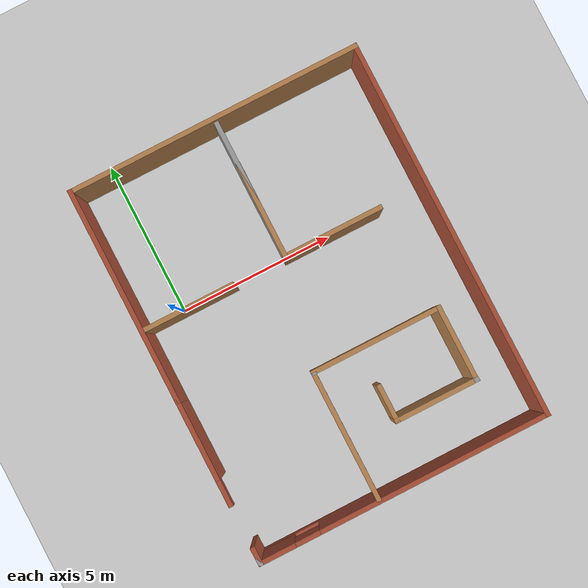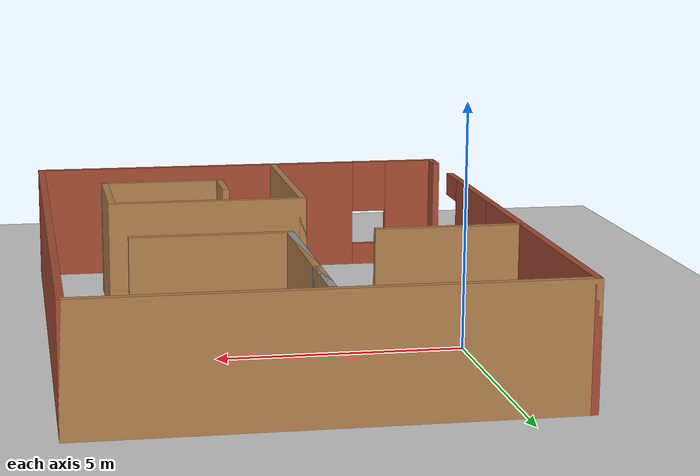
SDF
<sdf version="1.7">
 <world name="default">
  <light name="sun" type="directional">
   <pose>0 0 10 0 -0 0</pose>
   <diffuse>0.8 0.8 0.8 1</diffuse>
   <specular>0.2 0.2 0.2 1</specular>
   <attenuation>
    <range>1000</range>
    <constant>0.9</constant>
    <linear>0.01</linear>
    <quadratic>0.001</quadratic>
   </attenuation>
   <direction>-0.5 0.1 -0.9</direction>
   <spot><inner_angle>0</inner_angle><outer_angle>0</outer_angle><falloff>0</falloff></spot>
  </light>
  <model name="ground_plane">
   <static>1</static>
   <link name="link">
    <collision name="collision">
     <geometry><plane><normal>0 0 1</normal><size>100 100</size></plane></geometry>
     <surface><friction><ode><mu>100</mu><mu2>50</mu2></ode></friction></surface>
    </collision>
    <visual name="visual">
     <cast_shadows>0</cast_shadows>
     <geometry><plane><normal>0 0 1</normal><size>100 100</size></plane></geometry>
     <material>
      <script><uri>file://media/materials/scripts/gazebo.material</uri><name>Gazebo/Grey</name></script>
     </material>
    </visual>
   </link>
  </model>
  <gravity>0 0 -9.8</gravity>
  <magnetic_field>6e-06 2.3e-05 -4.2e-05</magnetic_field>
  <atmosphere type="adiabatic"/>
  <physics type="ode">
   <max_step_size>0.001</max_step_size>
   <real_time_factor>1</real_time_factor>
   <real_time_update_rate>1000</real_time_update_rate>
  </physics>
  <scene><ambient>0.4 0.4 0.4 1</ambient><background>0.7 0.7 0.7 1</background><shadows>1</shadows></scene>
  <spherical_coordinates>
   <surface_model>EARTH_WGS84</surface_model>
   <latitude_deg>0</latitude_deg>
   <longitude_deg>0</longitude_deg>
   <elevation>0</elevation>
   <heading_deg>0</heading_deg>
  </spherical_coordinates>
  <model name="house_model">
   <pose>3.465 -1.61 0 0 -0 0</pose>
   <link name="Wall_0">
    <pose>-4.675 -2.475 0 0 -0 -1.5708</pose>
    <visual name="Wall_0_Visual_0">
     <pose>-0.424144 0 1.25 0 -0 0</pose>
     <geometry><box><size>2.65171 0.15 2.5</size></box></geometry>
     <material>
      <script><uri>file://media/materials/scripts/gazebo.material</uri><name>Gazebo/Bricks</name></script>
      <ambient>1 1 1 1</ambient>
     </material>
     <meta><layer>0</layer></meta>
    </visual>
    <collision name="Wall_0_Collision_0">
     <geometry><box><size>2.65171 0.15 2.5</size></box></geometry>
     <pose>-0.424144 0 1.25 0 -0 0</pose>
    </collision>
    <visual name="Wall_0_Visual_1">
     <pose>1.32586 0 2.25 0 -0 0</pose>
     <geometry><box><size>0.848288 0.15 0.5</size></box></geometry>
     <material>
      <script><uri>file://media/materials/scripts/gazebo.material</uri><name>Gazebo/Bricks</name></script>
      <ambient>1 1 1 1</ambient>
     </material>
     <meta><layer>0</layer></meta>
    </visual>
    <collision name="Wall_0_Collision_1">
     <geometry><box><size>0.848288 0.15 0.5</size></box></geometry>
     <pose>1.32586 0 2.25 0 -0 0</pose>
    </collision>
   </link>
   <link name="Wall_10">
    <collision name="Wall_10_Collision">
     <geometry><box><size>1.5 0.15 2.5</size></box></geometry>
     <pose>0 0 1.25 0 -0 0</pose>
    </collision>
    <visual name="Wall_10_Visual">
     <pose>0 0 1.25 0 -0 0</pose>
     <geometry><box><size>1.5 0.15 2.5</size></box></geometry>
     <material>
      <script><uri>file://media/materials/scripts/gazebo.material</uri><name>Gazebo/Wood</name></script>
      <ambient>1 1 1 1</ambient>
     </material>
     <meta><layer>0</layer></meta>
    </visual>
    <pose>0.030455 5.18138 0 0 -0 -1.5708</pose>
   </link>
   <link name="Wall_11">
    <collision name="Wall_11_Collision">
     <geometry><box><size>0.16 0.15 2.5</size></box></geometry>
     <pose>0 0 1.25 0 -0 0</pose>
    </collision>
    <visual name="Wall_11_Visual">
     <pose>0 0 1.25 0 -0 0</pose>
     <geometry><box><size>0.16 0.15 2.5</size></box></geometry>
     <material>
      <script><uri>file://media/materials/scripts/gazebo.material</uri><name>Gazebo/Grey</name></script>
      <ambient>1 1 1 1</ambient>
     </material>
     <meta><layer>0</layer></meta>
    </visual>
    <pose>0.035455 4.50638 0 0 -0 0</pose>
   </link>
   <link name="Wall_12">
    <collision name="Wall_12_Collision">
     <geometry><box><size>3.15002 0.15 2.5</size></box></geometry>
     <pose>0 0 1.25 0 -0 0</pose>
    </collision>
    <visual name="Wall_12_Visual">
     <pose>0 0 1.25 0 -0 0</pose>
     <geometry><box><size>3.15002 0.15 2.5</size></box></geometry>
     <material>
      <script><uri>file://media/materials/scripts/gazebo.material</uri><name>Gazebo/Wood</name></script>
      <ambient>1 1 1 1</ambient>
     </material>
     <meta><layer>0</layer></meta>
    </visual>
    <pose>0.035455 3.00638 0 0 -0 -1.57413</pose>
   </link>
   <link name="Wall_13">
    <collision name="Wall_13_Collision">
     <geometry><box><size>3.25 0.15 2.5</size></box></geometry>
     <pose>0 0 1.25 0 -0 0</pose>
    </collision>
    <visual name="Wall_13_Visual">
     <pose>0 0 1.25 0 -0 0</pose>
     <geometry><box><size>3.25 0.15 2.5</size></box></geometry>
     <material>
      <script><uri>file://media/materials/scripts/gazebo.material</uri><name>Gazebo/Wood</name></script>
      <ambient>1 1 1 1</ambient>
     </material>
     <meta><layer>0</layer></meta>
    </visual>
    <pose>1.58045 1.50639 0 0 -0 0</pose>
   </link>
   <link name="Wall_15">
    <collision name="Wall_15_Collision">
     <geometry><box><size>3 0.15 2.5</size></box></geometry>
     <pose>0 0 1.25 0 -0 0</pose>
    </collision>
    <visual name="Wall_15_Visual">
     <pose>0 0 1.25 0 -0 0</pose>
     <geometry><box><size>3 0.15 2.5</size></box></geometry>
     <material>
      <script><uri>file://media/materials/scripts/gazebo.material</uri><name>Gazebo/Wood</name></script>
      <ambient>1 1 1 1</ambient>
     </material>
     <meta><layer>0</layer></meta>
    </visual>
    <pose>-3.16331 1.47959 0 0 -0 3.14159</pose>
   </link>
   <link name="Wall_17">
    <collision name="Wall_17_Collision">
     <geometry><box><size>4.25 0.15 2.5</size></box></geometry>
     <pose>0 0 1.25 0 -0 0</pose>
    </collision>
    <visual name="Wall_17_Visual">
     <pose>0 0 1.25 0 -0 0</pose>
     <geometry><box><size>4.25 0.15 2.5</size></box></geometry>
     <material>
      <script><uri>file://media/materials/scripts/gazebo.material</uri><name>Gazebo/Wood</name></script>
      <ambient>1 1 1 1</ambient>
     </material>
     <meta><layer>0</layer></meta>
    </visual>
    <pose>-0.800329 -3.92067 0 0 -0 1.5708</pose>
   </link>
   <link name="Wall_18">
    <collision name="Wall_18_Collision">
     <geometry><box><size>0.16 0.15 2.5</size></box></geometry>
     <pose>0 0 1.25 0 -0 0</pose>
    </collision>
    <visual name="Wall_18_Visual">
     <pose>0 0 1.25 0 -0 0</pose>
     <geometry><box><size>0.16 0.15 2.5</size></box></geometry>
     <material>
      <script><uri>file://media/materials/scripts/gazebo.material</uri><name>Gazebo/Grey</name></script>
      <ambient>1 1 1 1</ambient>
     </material>
     <meta><layer>0</layer></meta>
    </visual>
    <pose>-0.795329 -1.87067 0 0 -0 0</pose>
   </link>
   <link name="Wall_19">
    <collision name="Wall_19_Collision">
     <geometry><box><size>4.25 0.15 2.5</size></box></geometry>
     <pose>0 0 1.25 0 -0 0</pose>
    </collision>
    <visual name="Wall_19_Visual">
     <pose>0 0 1.25 0 -0 0</pose>
     <geometry><box><size>4.25 0.15 2.5</size></box></geometry>
     <material>
      <script><uri>file://media/materials/scripts/gazebo.material</uri><name>Gazebo/Wood</name></script>
      <ambient>1 1 1 1</ambient>
     </material>
     <meta><layer>0</layer></meta>
    </visual>
    <pose>1.25967 -1.87067 0 0 -0 0</pose>
   </link>
   <link name="Wall_2">
    <collision name="Wall_2_Collision">
     <geometry><box><size>7 0.15 2.5</size></box></geometry>
     <pose>0 0 1.25 0 -0 0</pose>
    </collision>
    <visual name="Wall_2_Visual">
     <pose>0 0 1.25 0 -0 0</pose>
     <geometry><box><size>7 0.15 2.5</size></box></geometry>
     <material>
      <script><uri>file://media/materials/scripts/gazebo.material</uri><name>Gazebo/Bricks</name></script>
      <ambient>1 1 1 1</ambient>
     </material>
     <meta><layer>0</layer></meta>
    </visual>
    <pose>-4.675 2.625 0 0 -0 1.5708</pose>
   </link>
   <link name="Wall_20">
    <collision name="Wall_20_Collision">
     <geometry><box><size>2.5 0.15 2.5</size></box></geometry>
     <pose>0 0 1.25 0 -0 0</pose>
    </collision>
    <visual name="Wall_20_Visual">
     <pose>0 0 1.25 0 -0 0</pose>
     <geometry><box><size>2.5 0.15 2.5</size></box></geometry>
     <material>
      <script><uri>file://media/materials/scripts/gazebo.material</uri><name>Gazebo/Wood</name></script>
      <ambient>1 1 1 1</ambient>
     </material>
     <meta><layer>0</layer></meta>
    </visual>
    <pose>3.30967 -3.04567 0 0 -0 -1.5708</pose>
   </link>
   <link name="Wall_21">
    <collision name="Wall_21_Collision">
     <geometry><box><size>0.16 0.15 2.5</size></box></geometry>
     <pose>0 0 1.25 0 -0 0</pose>
    </collision>
    <visual name="Wall_21_Visual">
     <pose>0 0 1.25 0 -0 0</pose>
     <geometry><box><size>0.16 0.15 2.5</size></box></geometry>
     <material>
      <script><uri>file://media/materials/scripts/gazebo.material</uri><name>Gazebo/Grey</name></script>
      <ambient>1 1 1 1</ambient>
     </material>
     <meta><layer>0</layer></meta>
    </visual>
    <pose>3.31467 -4.22067 0 0 -0 0</pose>
   </link>
   <link name="Wall_22">
    <collision name="Wall_22_Collision">
     <geometry><box><size>2.75 0.15 2.5</size></box></geometry>
     <pose>0 0 1.25 0 -0 0</pose>
    </collision>
    <visual name="Wall_22_Visual">
     <pose>0 0 1.25 0 -0 0</pose>
     <geometry><box><size>2.75 0.15 2.5</size></box></geometry>
     <material>
      <script><uri>file://media/materials/scripts/gazebo.material</uri><name>Gazebo/Wood</name></script>
      <ambient>1 1 1 1</ambient>
     </material>
     <meta><layer>0</layer></meta>
    </visual>
    <pose>2.01967 -4.22067 0 0 -0 3.14159</pose>
   </link>
   <link name="Wall_23">
    <collision name="Wall_23_Collision">
     <geometry><box><size>1.25 0.15 2.5</size></box></geometry>
     <pose>0 0 1.25 0 -0 0</pose>
    </collision>
    <visual name="Wall_23_Visual">
     <pose>0 0 1.25 0 -0 0</pose>
     <geometry><box><size>1.25 0.15 2.5</size></box></geometry>
     <material>
      <script><uri>file://media/materials/scripts/gazebo.material</uri><name>Gazebo/Wood</name></script>
      <ambient>1 1 1 1</ambient>
     </material>
     <meta><layer>0</layer></meta>
    </visual>
    <pose>0.719671 -3.67067 0 0 -0 1.5708</pose>
   </link>
   <link name="Wall_3">
    <collision name="Wall_3_Collision">
     <geometry><box><size>9.5 0.15 2.5</size></box></geometry>
     <pose>0 0 1.25 0 -0 0</pose>
    </collision>
    <visual name="Wall_3_Visual">
     <pose>0 0 1.25 0 -0 0</pose>
     <geometry><box><size>9.5 0.15 2.5</size></box></geometry>
     <material>
      <script><uri>file://media/materials/scripts/gazebo.material</uri><name>Gazebo/Wood</name></script>
      <ambient>1 1 1 1</ambient>
     </material>
     <meta><layer>0</layer></meta>
    </visual>
    <pose>-0 6.05 0 0 -0 0</pose>
   </link>
   <link name="Wall_4">
    <collision name="Wall_4_Collision">
     <geometry><box><size>12.25 0.15 2.5</size></box></geometry>
     <pose>0 0 1.25 0 -0 0</pose>
    </collision>
    <visual name="Wall_4_Visual">
     <pose>0 0 1.25 0 -0 0</pose>
     <geometry><box><size>12.25 0.15 2.5</size></box></geometry>
     <material>
      <script><uri>file://media/materials/scripts/gazebo.material</uri><name>Gazebo/Bricks</name></script>
      <ambient>1 1 1 1</ambient>
     </material>
     <meta><layer>0</layer></meta>
    </visual>
    <pose>4.675 0 0 0 -0 -1.5708</pose>
   </link>
   <link name="Wall_5">
    <pose>-0 -6.05 0 0 -0 3.14159</pose>
    <visual name="Wall_5_Visual_0">
     <pose>-1.00906 0 1.25 0 -0 0</pose>
     <geometry><box><size>7.48188 0.15 2.5</size></box></geometry>
     <material>
      <script><uri>file://media/materials/scripts/gazebo.material</uri><name>Gazebo/Bricks</name></script>
      <ambient>1 1 1 1</ambient>
     </material>
     <meta><layer>0</layer></meta>
    </visual>
    <collision name="Wall_5_Collision_0">
     <geometry><box><size>7.48188 0.15 2.5</size></box></geometry>
     <pose>-1.00906 0 1.25 0 -0 0</pose>
    </collision>
    <visual name="Wall_5_Visual_1">
     <pose>3.74094 0 0.25 0 -0 0</pose>
     <geometry><box><size>2.01812 0.15 0.5</size></box></geometry>
     <material>
      <script><uri>file://media/materials/scripts/gazebo.material</uri><name>Gazebo/Bricks</name></script>
      <ambient>1 1 1 1</ambient>
     </material>
     <meta><layer>0</layer></meta>
    </visual>
    <collision name="Wall_5_Collision_1">
     <geometry><box><size>2.01812 0.15 0.5</size></box></geometry>
     <pose>3.74094 0 0.25 0 -0 0</pose>
    </collision>
    <visual name="Wall_5_Visual_2">
     <pose>4.14094 0 1.5 0 -0 0</pose>
     <geometry><box><size>1.21812 0.15 2</size></box></geometry>
     <material>
      <script><uri>file://media/materials/scripts/gazebo.material</uri><name>Gazebo/Bricks</name></script>
      <ambient>1 1 1 1</ambient>
     </material>
     <meta><layer>0</layer></meta>
    </visual>
    <collision name="Wall_5_Collision_2">
     <geometry><box><size>1.21812 0.15 2</size></box></geometry>
     <pose>4.14094 0 1.5 0 -0 0</pose>
    </collision>
    <visual name="Wall_5_Visual_3">
     <pose>3.13188 0 1.9 0 -0 0</pose>
     <geometry><box><size>0.8 0.15 1.2</size></box></geometry>
     <material>
      <script><uri>file://media/materials/scripts/gazebo.material</uri><name>Gazebo/Bricks</name></script>
      <ambient>1 1 1 1</ambient>
     </material>
     <meta><layer>0</layer></meta>
    </visual>
    <collision name="Wall_5_Collision_3">
     <geometry><box><size>0.8 0.15 1.2</size></box></geometry>
     <pose>3.13188 0 1.9 0 -0 0</pose>
    </collision>
   </link>
   <link name="Wall_6">
    <collision name="Wall_6_Collision">
     <geometry><box><size>0.25 0.15 2.5</size></box></geometry>
     <pose>0 0 1.25 0 -0 0</pose>
    </collision>
    <visual name="Wall_6_Visual">
     <pose>0 0 1.25 0 -0 0</pose>
     <geometry><box><size>0.25 0.15 2.5</size></box></geometry>
     <material>
      <script><uri>file://media/materials/scripts/gazebo.material</uri><name>Gazebo/Grey</name></script>
      <ambient>1 1 1 1</ambient>
     </material>
     <meta><layer>0</layer></meta>
    </visual>
    <pose>-4.675 -6 0 0 -0 1.5708</pose>
   </link>
   <link name="Wall_7">
    <collision name="Wall_7_Collision">
     <geometry><box><size>0.5 0.15 2.5</size></box></geometry>
     <pose>0 0 1.25 0 -0 0</pose>
    </collision>
    <visual name="Wall_7_Visual">
     <pose>0 0 1.25 0 -0 0</pose>
     <geometry><box><size>0.5 0.15 2.5</size></box></geometry>
     <material>
      <script><uri>file://media/materials/scripts/gazebo.material</uri><name>Gazebo/Bricks</name></script>
      <ambient>1 1 1 1</ambient>
     </material>
     <meta><layer>0</layer></meta>
    </visual>
    <pose>-4.675 -5.775 0 0 -0 1.5708</pose>
   </link>
   <link name="Wall_9">
    <collision name="Wall_9_Collision">
     <geometry><box><size>4.5 0.15 2.5</size></box></geometry>
     <pose>0 0 1.25 0 -0 0</pose>
    </collision>
    <visual name="Wall_9_Visual">
     <pose>0 0 1.25 0 -0 0</pose>
     <geometry><box><size>4.5 0.15 2.5</size></box></geometry>
     <material>
      <script><uri>file://media/materials/scripts/gazebo.material</uri><name>Gazebo/Grey</name></script>
      <ambient>1 1 1 1</ambient>
     </material>
     <meta><layer>0</layer></meta>
    </visual>
    <pose>0.030455 3.68139 0 0 -0 1.5708</pose>
   </link>
   <static>1</static>
  </model>
 </world>
</sdf>
